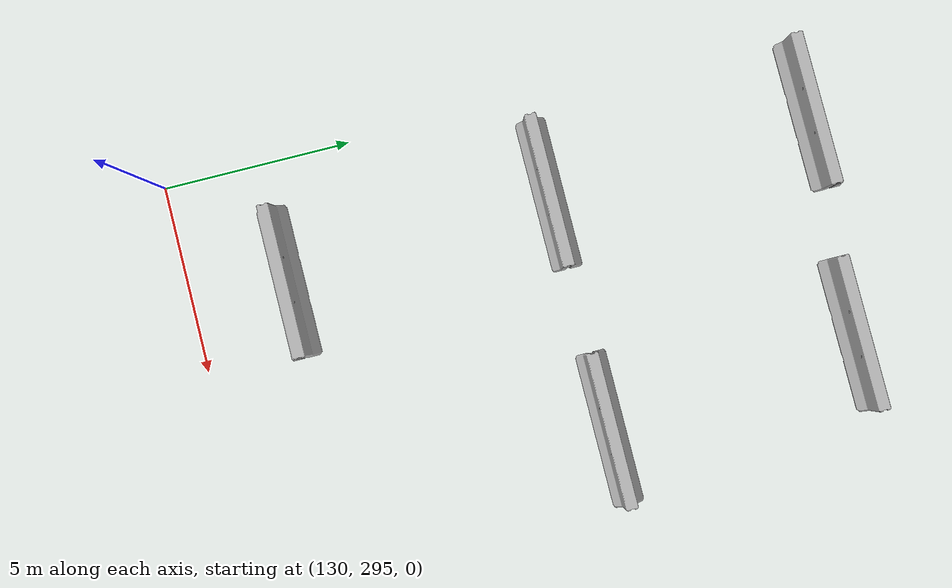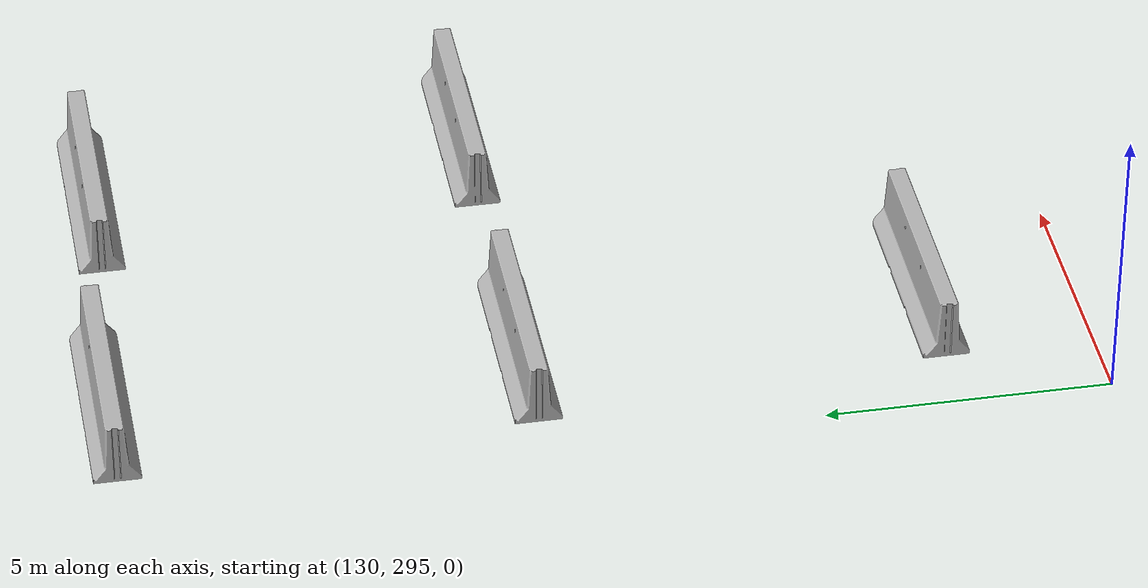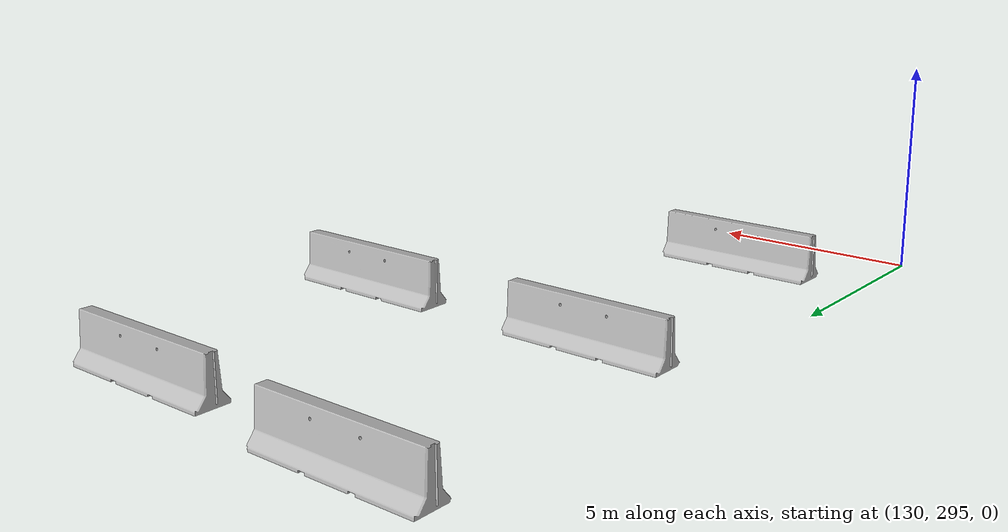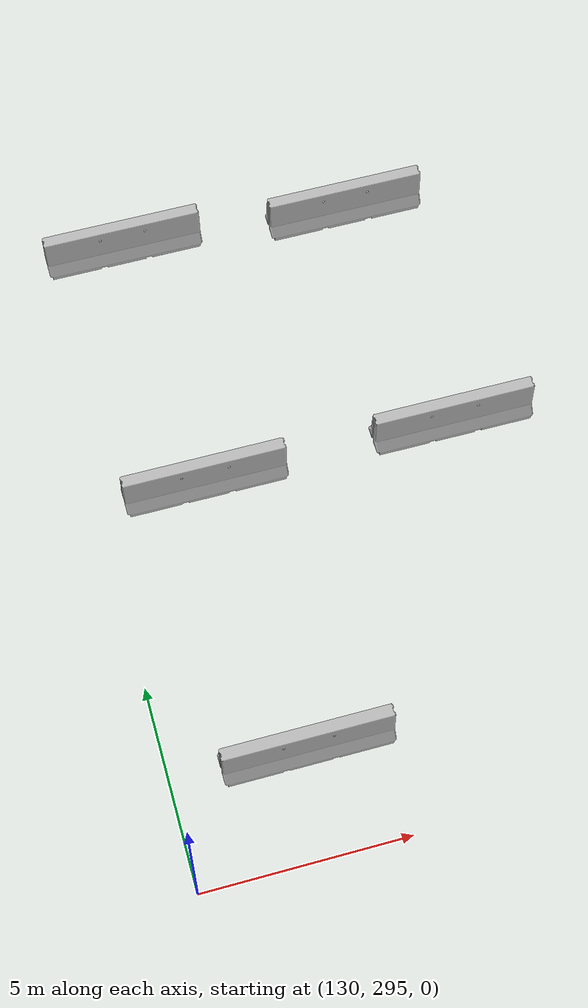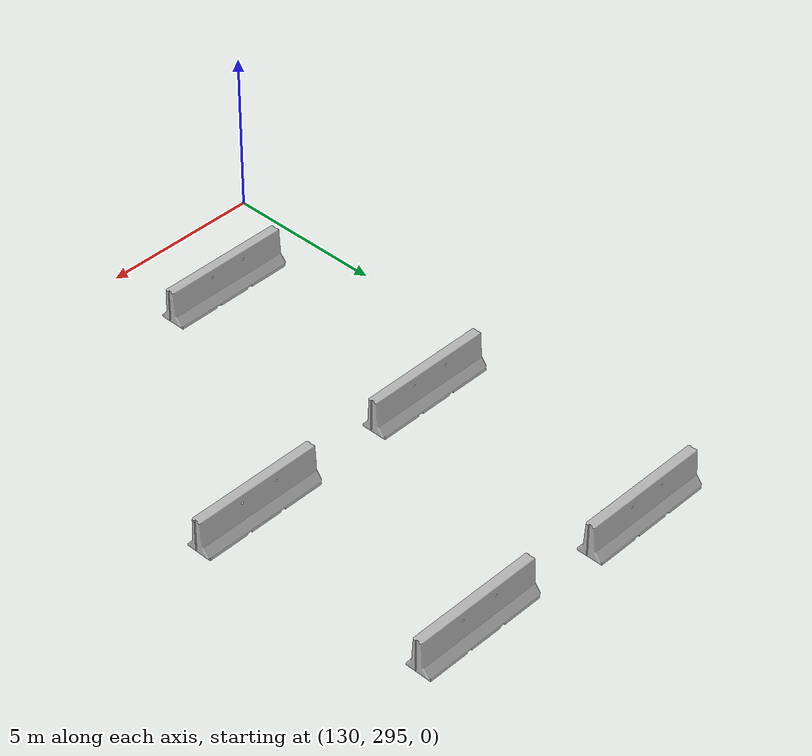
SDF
<sdf version="1.6">
 <world name="default">
  <model name="jersey_barrier_0">
   <static>1</static>
   <link name="link">
    <visual name="visual">
     <geometry><mesh><uri>model://jersey_barrier/meshes/jersey_barrier.dae</uri></mesh></geometry>
    </visual>
    <collision name="upright">
     <pose>0 0 0.5715 0 -0 0</pose>
     <geometry><box><size>4.06542 0.3063 1.143</size></box></geometry>
    </collision>
    <collision name="base">
     <pose>0 0 0.032258 0 -0 0</pose>
     <geometry><box><size>4.06542 0.8107 0.064516</size></box></geometry>
    </collision>
    <collision name="base2">
     <pose>0 0 0.1 0 -0 0</pose>
     <geometry><box><size>4.06542 0.65 0.1</size></box></geometry>
    </collision>
    <collision name="base3">
     <pose>0 0 0.2 0 -0 0</pose>
     <geometry><box><size>4.06542 0.5 0.1</size></box></geometry>
    </collision>
    <collision name="left-angle">
     <pose>0 -0.224 0.2401 0.9 -0 0</pose>
     <geometry><box><size>4.06542 0.5 0.064516</size></box></geometry>
    </collision>
    <collision name="right-angle">
     <pose>0 0.224 0.2401 -0.9 0 0</pose>
     <geometry><box><size>4.06542 0.5 0.064516</size></box></geometry>
    </collision>
   </link>
   <pose>138.999 304.816 0 0 -0 0</pose>
  </model>
  <model name="jersey_barrier_3">
   <static>1</static>
   <link name="link">
    <visual name="visual">
     <geometry><mesh><uri>model://jersey_barrier/meshes/jersey_barrier.dae</uri></mesh></geometry>
    </visual>
    <collision name="upright">
     <pose>0 0 0.5715 0 -0 0</pose>
     <geometry><box><size>4.06542 0.3063 1.143</size></box></geometry>
    </collision>
    <collision name="base">
     <pose>0 0 0.032258 0 -0 0</pose>
     <geometry><box><size>4.06542 0.8107 0.064516</size></box></geometry>
    </collision>
    <collision name="base2">
     <pose>0 0 0.1 0 -0 0</pose>
     <geometry><box><size>4.06542 0.65 0.1</size></box></geometry>
    </collision>
    <collision name="base3">
     <pose>0 0 0.2 0 -0 0</pose>
     <geometry><box><size>4.06542 0.5 0.1</size></box></geometry>
    </collision>
    <collision name="left-angle">
     <pose>0 -0.224 0.2401 0.9 -0 0</pose>
     <geometry><box><size>4.06542 0.5 0.064516</size></box></geometry>
    </collision>
    <collision name="right-angle">
     <pose>0 0.224 0.2401 -0.9 0 0</pose>
     <geometry><box><size>4.06542 0.5 0.064516</size></box></geometry>
    </collision>
   </link>
   <pose>138.181 311.616 0 0 -0 0</pose>
  </model>
  <model name="jersey_barrier_2_clone_12">
   <static>1</static>
   <link name="link">
    <visual name="visual">
     <geometry><mesh><uri>model://jersey_barrier/meshes/jersey_barrier.dae</uri></mesh></geometry>
    </visual>
    <collision name="upright">
     <pose>0 0 0.5715 0 -0 0</pose>
     <geometry><box><size>4.06542 0.3063 1.143</size></box></geometry>
    </collision>
    <collision name="base">
     <pose>0 0 0.032258 0 -0 0</pose>
     <geometry><box><size>4.06542 0.8107 0.064516</size></box></geometry>
    </collision>
    <collision name="base2">
     <pose>0 0 0.1 0 -0 0</pose>
     <geometry><box><size>4.06542 0.65 0.1</size></box></geometry>
    </collision>
    <collision name="base3">
     <pose>0 0 0.2 0 -0 0</pose>
     <geometry><box><size>4.06542 0.5 0.1</size></box></geometry>
    </collision>
    <collision name="left-angle">
     <pose>0 -0.224 0.2401 0.9 -0 0</pose>
     <geometry><box><size>4.06542 0.5 0.064516</size></box></geometry>
    </collision>
    <collision name="right-angle">
     <pose>0 0.224 0.2401 -0.9 0 0</pose>
     <geometry><box><size>4.06542 0.5 0.064516</size></box></geometry>
    </collision>
   </link>
   <pose>132.318 311.976 0 0 -0 0</pose>
  </model>
  <model name="jersey_barrier_2_clone_13">
   <static>1</static>
   <link name="link">
    <visual name="visual">
     <geometry><mesh><uri>model://jersey_barrier/meshes/jersey_barrier.dae</uri></mesh></geometry>
    </visual>
    <collision name="upright">
     <pose>0 0 0.5715 0 -0 0</pose>
     <geometry><box><size>4.06542 0.3063 1.143</size></box></geometry>
    </collision>
    <collision name="base">
     <pose>0 0 0.032258 0 -0 0</pose>
     <geometry><box><size>4.06542 0.8107 0.064516</size></box></geometry>
    </collision>
    <collision name="base2">
     <pose>0 0 0.1 0 -0 0</pose>
     <geometry><box><size>4.06542 0.65 0.1</size></box></geometry>
    </collision>
    <collision name="base3">
     <pose>0 0 0.2 0 -0 0</pose>
     <geometry><box><size>4.06542 0.5 0.1</size></box></geometry>
    </collision>
    <collision name="left-angle">
     <pose>0 -0.224 0.2401 0.9 -0 0</pose>
     <geometry><box><size>4.06542 0.5 0.064516</size></box></geometry>
    </collision>
    <collision name="right-angle">
     <pose>0 0.224 0.2401 -0.9 0 0</pose>
     <geometry><box><size>4.06542 0.5 0.064516</size></box></geometry>
    </collision>
   </link>
   <pose>132.675 304.802 0 0 -0 0</pose>
  </model>
  <model name="jersey_barrier_2_clone_14">
   <static>1</static>
   <link name="link">
    <visual name="visual">
     <geometry><mesh><uri>model://jersey_barrier/meshes/jersey_barrier.dae</uri></mesh></geometry>
    </visual>
    <collision name="upright">
     <pose>0 0 0.5715 0 -0 0</pose>
     <geometry><box><size>4.06542 0.3063 1.143</size></box></geometry>
    </collision>
    <collision name="base">
     <pose>0 0 0.032258 0 -0 0</pose>
     <geometry><box><size>4.06542 0.8107 0.064516</size></box></geometry>
    </collision>
    <collision name="base2">
     <pose>0 0 0.1 0 -0 0</pose>
     <geometry><box><size>4.06542 0.65 0.1</size></box></geometry>
    </collision>
    <collision name="base3">
     <pose>0 0 0.2 0 -0 0</pose>
     <geometry><box><size>4.06542 0.5 0.1</size></box></geometry>
    </collision>
    <collision name="left-angle">
     <pose>0 -0.224 0.2401 0.9 -0 0</pose>
     <geometry><box><size>4.06542 0.5 0.064516</size></box></geometry>
    </collision>
    <collision name="right-angle">
     <pose>0 0.224 0.2401 -0.9 0 0</pose>
     <geometry><box><size>4.06542 0.5 0.064516</size></box></geometry>
    </collision>
   </link>
   <pose>133.241 297.605 0 0 -0 0</pose>
  </model>
 </world>
</sdf>
